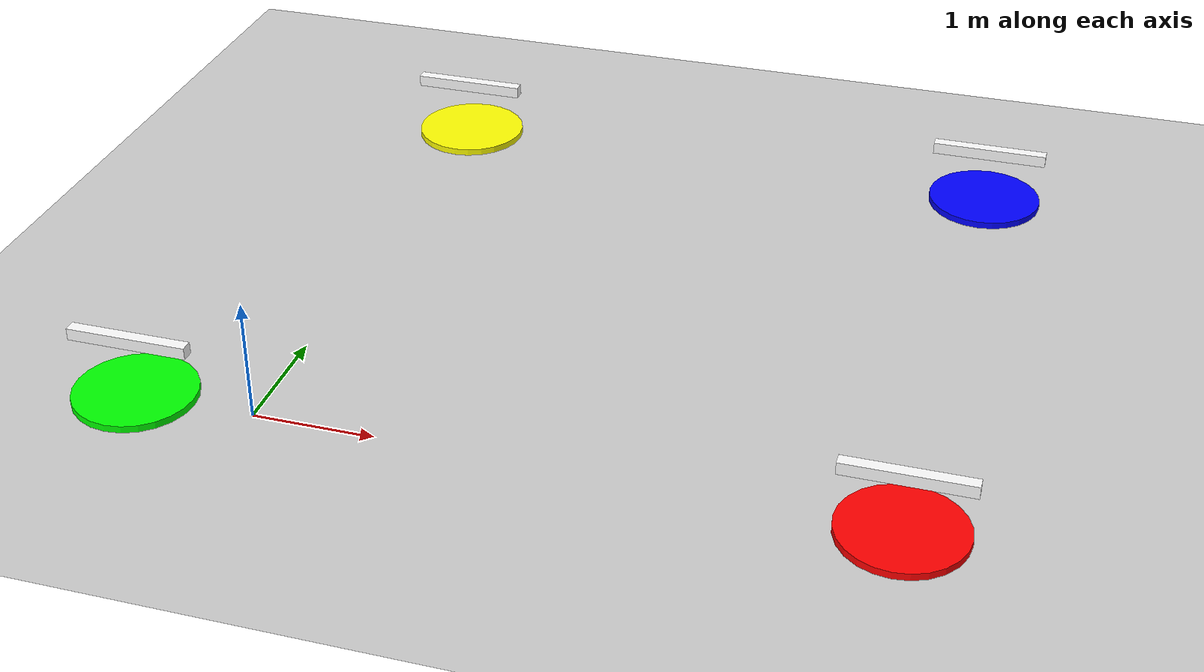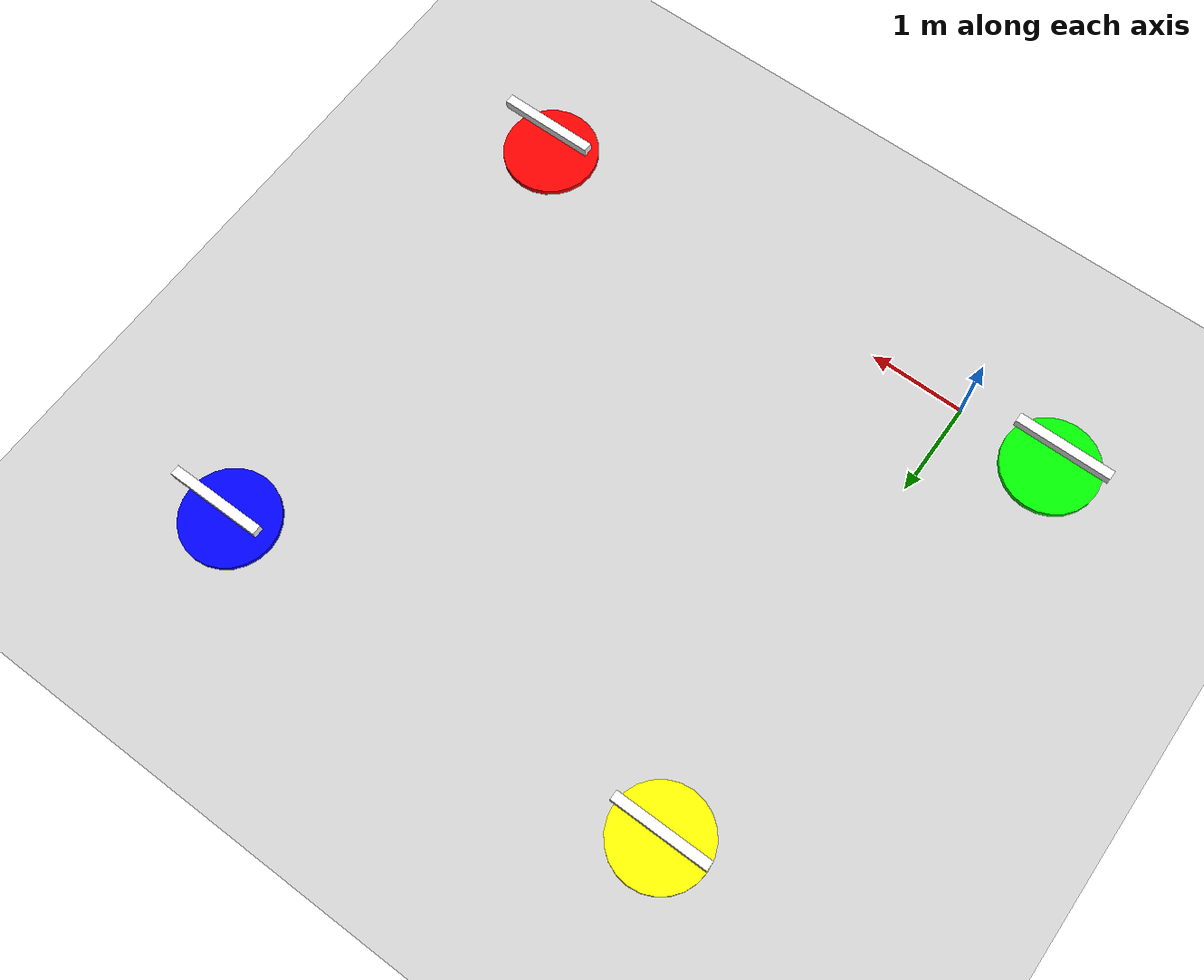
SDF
<?xml version="1.0" ?>

<sdf version="1.6">
  <world name="default">
    <physics name="4ms" type="ignored">
      <max_step_size>0.004</max_step_size>
      <real_time_factor>1.0</real_time_factor>
    </physics>
    <!-- Plugin for simulating physics -->
    <plugin filename="gz-sim-physics-system" name="gz::sim::systems::Physics">
    </plugin>

    <!-- Plugin for handling user commands -->
    <plugin filename="gz-sim-user-commands-system" name="gz::sim::systems::UserCommands">
    </plugin>

    <!-- Plugin for broadcasting scene updates -->
    <plugin filename="gz-sim-scene-broadcaster-system" name="gz::sim::systems::SceneBroadcaster">
    </plugin>

    <!-- Plugin for handling sensors like the LIDAR -->
    <plugin filename="gz-sim-sensors-system" name="gz::sim::systems::Sensors">
      <render_engine>ogre2</render_engine>
    </plugin>

    <scene>
      <grid>false</grid>
    </scene>

    <gui fullscreen="0">

      <!-- 3D scene -->
      <plugin filename="GzScene3D" name="3D View">
        <ignition-gui>
          <title>3D View</title>
          <property type="bool" key="showTitleBar">false</property>
          <property type="string" key="state">docked</property>
        </ignition-gui>

        <engine>ogre2</engine>
        <scene>scene</scene>
        <ambient_light>0.4 0.4 0.4</ambient_light>
        <background_color>0.8 0.8 0.8</background_color>
        <camera_follow>
          <target>X3</target>
          <p_gain>0.5</p_gain>
          <offset>-3 0.5 1</offset>
        </camera_follow>
      </plugin>

      <!-- World control -->
      <plugin filename="WorldControl" name="World control">
        <ignition-gui>
          <title>World control</title>
          <property type="bool" key="showTitleBar">false</property>
          <property type="bool" key="resizable">false</property>
          <property type="double" key="height">72</property>
          <property type="double" key="width">121</property>
          <property type="double" key="z">1</property>

          <property type="string" key="state">floating</property>
          <anchors target="3D View">
            <line own="left" target="left"/>
            <line own="bottom" target="bottom"/>
          </anchors>
        </ignition-gui>

        <play_pause>true</play_pause>
        <step>true</step>
        <start_paused>true</start_paused>

      </plugin>

      <!-- World statistics -->
      <plugin filename="WorldStats" name="World stats">
        <ignition-gui>
          <title>World stats</title>
          <property type="bool" key="showTitleBar">false</property>
          <property type="bool" key="resizable">false</property>
          <property type="double" key="height">110</property>
          <property type="double" key="width">290</property>
          <property type="double" key="z">1</property>

          <property type="string" key="state">floating</property>
          <anchors target="3D View">
            <line own="right" target="right"/>
            <line own="bottom" target="bottom"/>
          </anchors>
        </ignition-gui>

        <sim_time>true</sim_time>
        <real_time>true</real_time>
        <real_time_factor>true</real_time_factor>
        <iterations>true</iterations>
      </plugin>

      <plugin filename="Teleop" name="Teleop">
        <ignition-gui>
          <property type="string" key="state">docked</property>
        </ignition-gui>
        <topic>/drone/cmd_vel</topic>
      </plugin>
    </gui>

    <light type="directional" name="sun">
      <cast_shadows>true</cast_shadows>
      <pose>0 0 10 0 0 0</pose>
      <diffuse>1 1 1 1</diffuse>
      <specular>0.5 0.5 0.5 1</specular>
      <attenuation>
        <range>1000</range>
        <constant>0.9</constant>
        <linear>0.01</linear>
        <quadratic>0.001</quadratic>
      </attenuation>
      <direction>-0.5 0.1 -0.9</direction>
    </light>

    <model name="ground_plane">
      <static>true</static>
      <link name="link">
        <collision name="collision">
          <geometry>
            <plane>
              <normal>0 0 1</normal>
              <size>100 100</size>
            </plane>
          </geometry>
          <surface>
            <friction>
              <ode>
                <mu>0.0</mu>
                <mu2>0.0</mu2>
              </ode>
            </friction>
          </surface>
        </collision>
        <visual name="visual">
          <geometry>
            <plane>
              <normal>0 0 1</normal>
              <size>100 100</size>
            </plane>
          </geometry>
          <material>
            <ambient>0.8 0.8 0.8 1</ambient>
            <diffuse>0.8 0.8 0.8 1</diffuse>
            <specular>0.8 0.8 0.8 1</specular>
          </material>
        </visual>
      </link>
    </model>

    <!-- Charging Station with Physics -->
    <model name="charging_station">
      <pose>-1 0 0 0 0 0</pose>
      <static>true</static>
      <link name="link">

        <!-- COLLISION for base cylinder -->
        <collision name="base_collision">
          <geometry>
            <cylinder>
              <radius>0.5</radius>
              <length>0.1</length>
            </cylinder>
          </geometry>
          <surface>
            <contact>
              <ode>
                <max_vel>0.1</max_vel>
                <min_depth>0.001</min_depth>
              </ode>
            </contact>
            <friction>
              <ode>
                <mu>1.0</mu>
                <mu2>1.0</mu2>
              </ode>
            </friction>
          </surface>
        </collision>

        <!-- COLLISION for label (at position 0 0 0.5) -->
        <collision name="label_collision">
          <pose>0 0 0.5 0 0 0</pose>          <!-- This gives it physics at the label position -->
          <geometry>
            <box>
              <size>1 0.1 0.1</size>
            </box>
          </geometry>
          <surface>
            <contact>
              <ode>
                <max_vel>0.1</max_vel>
                <min_depth>0.001</min_depth>
              </ode>
            </contact>
            <friction>
              <ode>
                <mu>0.8</mu>
                <mu2>0.8</mu2>
              </ode>
            </friction>
          </surface>
        </collision>

        <!-- VISUAL for base cylinder -->
        <visual name="base_visual">
          <geometry>
            <cylinder>
              <radius>0.5</radius>
              <length>0.1</length>
            </cylinder>
          </geometry>
          <material>
            <ambient>0 1 0 1</ambient>            <!-- Green -->
            <diffuse>0 1 0 1</diffuse>
          </material>
        </visual>

        <!-- VISUAL for label -->
        <visual name="label_visual">
          <pose>0 0 0.5 0 0 0</pose>
          <geometry>
            <box>
              <size>1 0.1 0.1</size>
            </box>
          </geometry>
          <material>
            <ambient>1 1 1 1</ambient>
            <diffuse>1 1 1 1</diffuse>
          </material>
        </visual>

        <!-- INERTIAL properties for the combined shape -->
        <inertial>
          <mass>6.0</mass>          <!-- Total mass of base + label -->
          <pose>0 0 0.25 0 0 0</pose>          <!-- Center of mass between base (z=0.05) and label (z=0.5) -->
          <inertia>
            <!-- Inertia for combined cylinder + box -->
            <ixx>0.26</ixx>
            <ixy>0</ixy>
            <ixz>0</ixz>
            <iyy>0.26</iyy>
            <iyz>0</iyz>
            <izz>0.12</izz>
          </inertia>
        </inertial>

      </link>
    </model>

    <!-- Point A with Physics -->
    <model name="point_a">
      <pose>5 0 0 0 0 0</pose>
      <static>true</static>
      <link name="link">
        <collision name="collision">
          <geometry>
            <cylinder>
              <radius>0.5</radius>
              <length>0.1</length>
            </cylinder>
          </geometry>
          <surface>
            <contact>
              <ode>
                <max_vel>0.1</max_vel>
                <min_depth>0.001</min_depth>
              </ode>
            </contact>
            <friction>
              <ode>
                <mu>1.0</mu>
                <mu2>1.0</mu2>
              </ode>
            </friction>
          </surface>
        </collision>

        <visual name="visual">
          <geometry>
            <cylinder>
              <radius>0.5</radius>
              <length>0.1</length>
            </cylinder>
          </geometry>
          <material>
            <ambient>1 0 0 1</ambient>            <!-- Red -->
            <diffuse>1 0 0 1</diffuse>
          </material>
        </visual>

        <inertial>
          <mass>10.0</mass>
          <inertia>
            <ixx>0.104167</ixx>
            <ixy>0</ixy>
            <ixz>0</ixz>
            <iyy>0.104167</iyy>
            <iyz>0</iyz>
            <izz>0.125</izz>
          </inertia>
        </inertial>

        <visual name="label">
          <pose>0 0 0.5 0 0 0</pose>
          <geometry>
            <box>
              <size>1 0.1 0.1</size>
            </box>
          </geometry>
          <material>
            <ambient>1 1 1 1</ambient>
            <diffuse>1 1 1 1</diffuse>
          </material>
        </visual>
      </link>
    </model>

    <!-- Point B with Physics -->
    <model name="point_b">
      <pose>5 5 0 0 0 0</pose>
      <static>true</static>
      <link name="link">
        <collision name="collision">
          <geometry>
            <cylinder>
              <radius>0.5</radius>
              <length>0.1</length>
            </cylinder>
          </geometry>
          <surface>
            <contact>
              <ode>
                <max_vel>0.1</max_vel>
                <min_depth>0.001</min_depth>
              </ode>
            </contact>
            <friction>
              <ode>
                <mu>1.0</mu>
                <mu2>1.0</mu2>
              </ode>
            </friction>
          </surface>
        </collision>

        <visual name="visual">
          <geometry>
            <cylinder>
              <radius>0.5</radius>
              <length>0.1</length>
            </cylinder>
          </geometry>
          <material>
            <ambient>0 0 1 1</ambient>            <!-- Blue -->
            <diffuse>0 0 1 1</diffuse>
          </material>
        </visual>

        <inertial>
          <mass>10.0</mass>
          <inertia>
            <ixx>0.104167</ixx>
            <ixy>0</ixy>
            <ixz>0</ixz>
            <iyy>0.104167</iyy>
            <iyz>0</iyz>
            <izz>0.125</izz>
          </inertia>
        </inertial>

        <visual name="label">
          <pose>0 0 0.5 0 0 0</pose>
          <geometry>
            <box>
              <size>1 0.1 0.1</size>
            </box>
          </geometry>
          <material>
            <ambient>1 1 1 1</ambient>
            <diffuse>1 1 1 1</diffuse>
          </material>
        </visual>
      </link>
    </model>

    <!-- Point C with Physics -->
    <model name="point_c">
      <pose>0 5 0 0 0 0</pose>
      <static>true</static>
      <link name="link">
        <collision name="collision">
          <geometry>
            <cylinder>
              <radius>0.5</radius>
              <length>0.1</length>
            </cylinder>
          </geometry>
          <surface>
            <contact>
              <ode>
                <max_vel>0.1</max_vel>
                <min_depth>0.001</min_depth>
              </ode>
            </contact>
            <friction>
              <ode>
                <mu>1.0</mu>
                <mu2>1.0</mu2>
              </ode>
            </friction>
          </surface>
        </collision>

        <visual name="visual">
          <geometry>
            <cylinder>
              <radius>0.5</radius>
              <length>0.1</length>
            </cylinder>
          </geometry>
          <material>
            <ambient>1 1 0 1</ambient>            <!-- Yellow -->
            <diffuse>1 1 0 1</diffuse>
          </material>
        </visual>

        <inertial>
          <mass>10.0</mass>
          <inertia>
            <ixx>0.104167</ixx>
            <ixy>0</ixy>
            <ixz>0</ixz>
            <iyy>0.104167</iyy>
            <iyz>0</iyz>
            <izz>0.125</izz>
          </inertia>
        </inertial>

        <visual name="label">
          <pose>0 0 0.5 0 0 0</pose>
          <geometry>
            <box>
              <size>1 0.1 0.1</size>
            </box>
          </geometry>
          <material>
            <ambient>1 1 1 1</ambient>
            <diffuse>1 1 1 1</diffuse>
          </material>
        </visual>
      </link>
    </model>

  </world>
</sdf>
